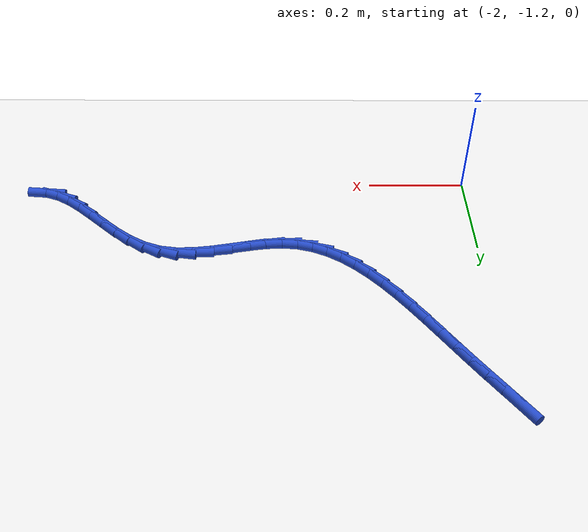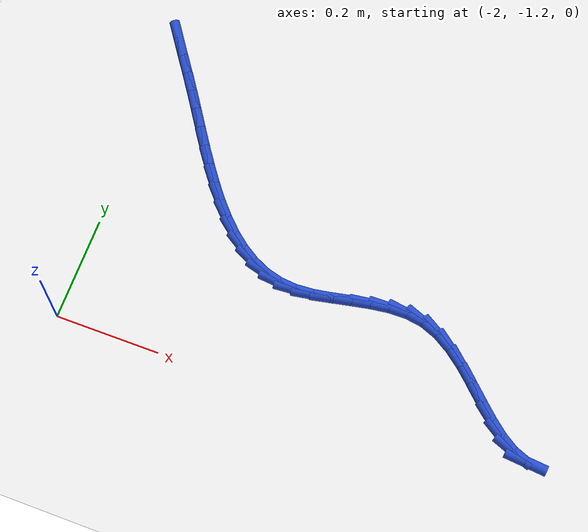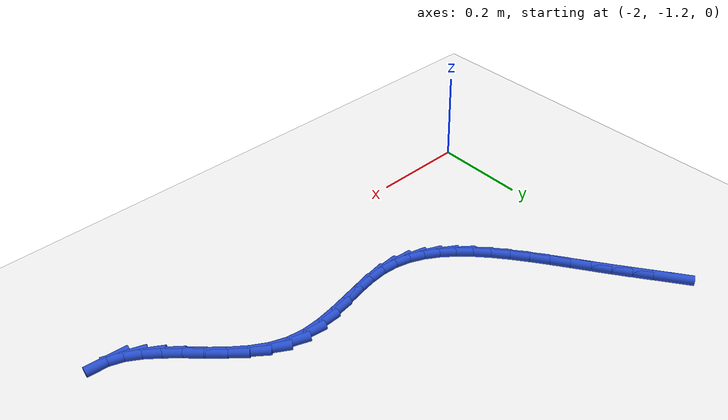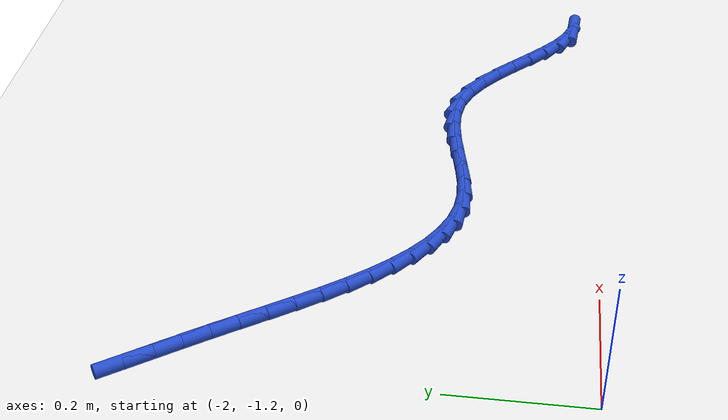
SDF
<sdf version="1.6">
 <world name="default">
  <model name="ground_plane">
   <static>1</static>
   <link name="link">
    <collision name="collision">
     <geometry><plane><normal>0 0 1</normal><size>100 100</size></plane></geometry>
     <surface><friction><ode><mu>100</mu><mu2>50</mu2></ode></friction></surface>
    </collision>
    <visual name="visual">
     <cast_shadows>0</cast_shadows>
     <geometry><plane><normal>0 0 1</normal><size>100 100</size></plane></geometry>
     <material>
      <script><uri>file://media/materials/scripts/gazebo.material</uri><name>Gazebo/WhiteGlow</name></script>
     </material>
    </visual>
   </link>
  </model>
  <model name="line">
   <link name="link_116">
    <pose>-2.001937897660048 -0.5950601714804856 0.01 0 1.57 -0.9677844719969911</pose>
    <collision name="collision">
     <geometry><cylinder><radius>0.01</radius><length>0.08</length></cylinder></geometry>
    </collision>
    <visual name="visual">
     <material>
      <script><name>Gazebo/Blue</name><uri>file://media/materials/scripts/gazebo.material</uri></script>
     </material>
     <geometry><cylinder><radius>0.01</radius><length>0.08</length></cylinder></geometry>
    </visual>
   </link>
   <link name="link_117">
    <pose>-1.980203551429391 -0.6266247555367879 0.01 0 1.57 -0.9652644201954953</pose>
    <collision name="collision">
     <geometry><cylinder><radius>0.01</radius><length>0.08</length></cylinder></geometry>
    </collision>
    <visual name="visual">
     <material>
      <script><name>Gazebo/Blue</name><uri>file://media/materials/scripts/gazebo.material</uri></script>
     </material>
     <geometry><cylinder><radius>0.01</radius><length>0.08</length></cylinder></geometry>
    </visual>
   </link>
   <link name="link_118">
    <pose>-1.957997971406882 -0.6587003565629057 0.01 0 1.57 -0.9707985864369848</pose>
    <collision name="collision">
     <geometry><cylinder><radius>0.01</radius><length>0.08</length></cylinder></geometry>
    </collision>
    <visual name="visual">
     <material>
      <script><name>Gazebo/Blue</name><uri>file://media/materials/scripts/gazebo.material</uri></script>
     </material>
     <geometry><cylinder><radius>0.01</radius><length>0.08</length></cylinder></geometry>
    </visual>
   </link>
   <link name="link_119">
    <pose>-1.9356383822180014 -0.6913834359325519 0.01 0 1.57 -0.9824173266179375</pose>
    <collision name="collision">
     <geometry><cylinder><radius>0.01</radius><length>0.08</length></cylinder></geometry>
    </collision>
    <visual name="visual">
     <material>
      <script><name>Gazebo/Blue</name><uri>file://media/materials/scripts/gazebo.material</uri></script>
     </material>
     <geometry><cylinder><radius>0.01</radius><length>0.08</length></cylinder></geometry>
    </visual>
   </link>
   <link name="link_120">
    <pose>-1.9133988761763276 -0.7247155050009931 0.01 0 1.57 -0.9884118796462621</pose>
    <collision name="collision">
     <geometry><cylinder><radius>0.01</radius><length>0.08</length></cylinder></geometry>
    </collision>
    <visual name="visual">
     <material>
      <script><name>Gazebo/Blue</name><uri>file://media/materials/scripts/gazebo.material</uri></script>
     </material>
     <geometry><cylinder><radius>0.01</radius><length>0.08</length></cylinder></geometry>
    </visual>
   </link>
   <link name="link_121">
    <pose>-1.8912483223405978 -0.7583492245670599 0.01 0 1.57 -0.9839501264993277</pose>
    <collision name="collision">
     <geometry><cylinder><radius>0.01</radius><length>0.08</length></cylinder></geometry>
    </collision>
    <visual name="visual">
     <material>
      <script><name>Gazebo/Blue</name><uri>file://media/materials/scripts/gazebo.material</uri></script>
     </material>
     <geometry><cylinder><radius>0.01</radius><length>0.08</length></cylinder></geometry>
    </visual>
   </link>
   <link name="link_122">
    <pose>-1.8690239162723434 -0.7917695050637632 0.01 0 1.57 -0.9687903544646685</pose>
    <collision name="collision">
     <geometry><cylinder><radius>0.01</radius><length>0.08</length></cylinder></geometry>
    </collision>
    <visual name="visual">
     <material>
      <script><name>Gazebo/Blue</name><uri>file://media/materials/scripts/gazebo.material</uri></script>
     </material>
     <geometry><cylinder><radius>0.01</radius><length>0.08</length></cylinder></geometry>
    </visual>
   </link>
   <link name="link_123">
    <pose>-1.8465623347442255 -0.8244605959936709 0.01 0 1.57 -0.9421632851865678</pose>
    <collision name="collision">
     <geometry><cylinder><radius>0.01</radius><length>0.08</length></cylinder></geometry>
    </collision>
    <visual name="visual">
     <material>
      <script><name>Gazebo/Blue</name><uri>file://media/materials/scripts/gazebo.material</uri></script>
     </material>
     <geometry><cylinder><radius>0.01</radius><length>0.08</length></cylinder></geometry>
    </visual>
   </link>
   <link name="link_124">
    <pose>-1.8237002545289052 -0.8559067468593513 0.01 0 1.57 -0.9027142070085242</pose>
    <collision name="collision">
     <geometry><cylinder><radius>0.01</radius><length>0.08</length></cylinder></geometry>
    </collision>
    <visual name="visual">
     <material>
      <script><name>Gazebo/Blue</name><uri>file://media/materials/scripts/gazebo.material</uri></script>
     </material>
     <geometry><cylinder><radius>0.01</radius><length>0.08</length></cylinder></geometry>
    </visual>
   </link>
   <link name="link_125">
    <pose>-1.8002743523990439 -0.8855922071633723 0.01 0 1.57 -0.8484610851969966</pose>
    <collision name="collision">
     <geometry><cylinder><radius>0.01</radius><length>0.08</length></cylinder></geometry>
    </collision>
    <visual name="visual">
     <material>
      <script><name>Gazebo/Blue</name><uri>file://media/materials/scripts/gazebo.material</uri></script>
     </material>
     <geometry><cylinder><radius>0.01</radius><length>0.08</length></cylinder></geometry>
    </visual>
   </link>
   <link name="link_126">
    <pose>-1.7761213051273022 -0.9130012264083017 0.01 0 1.57 -0.7768062483121362</pose>
    <collision name="collision">
     <geometry><cylinder><radius>0.01</radius><length>0.08</length></cylinder></geometry>
    </collision>
    <visual name="visual">
     <material>
      <script><name>Gazebo/Blue</name><uri>file://media/materials/scripts/gazebo.material</uri></script>
     </material>
     <geometry><cylinder><radius>0.01</radius><length>0.08</length></cylinder></geometry>
    </visual>
   </link>
   <link name="link_127">
    <pose>-1.7510777894863403 -0.9376180540967074 0.01 0 1.57 -0.6847312386911316</pose>
    <collision name="collision">
     <geometry><cylinder><radius>0.01</radius><length>0.08</length></cylinder></geometry>
    </collision>
    <visual name="visual">
     <material>
      <script><name>Gazebo/Blue</name><uri>file://media/materials/scripts/gazebo.material</uri></script>
     </material>
     <geometry><cylinder><radius>0.01</radius><length>0.08</length></cylinder></geometry>
    </visual>
   </link>
   <link name="link_128">
    <pose>-1.7249804822488197 -0.9589269397311574 0.01 0 1.57 -0.569416112002807</pose>
    <collision name="collision">
     <geometry><cylinder><radius>0.01</radius><length>0.08</length></cylinder></geometry>
    </collision>
    <visual name="visual">
     <material>
      <script><name>Gazebo/Blue</name><uri>file://media/materials/scripts/gazebo.material</uri></script>
     </material>
     <geometry><cylinder><radius>0.01</radius><length>0.08</length></cylinder></geometry>
    </visual>
   </link>
   <link name="link_129">
    <pose>-1.6976660601874027 -0.97641213281422 0.01 0 1.57 -0.42958771540316043</pose>
    <collision name="collision">
     <geometry><cylinder><radius>0.01</radius><length>0.08</length></cylinder></geometry>
    </collision>
    <visual name="visual">
     <material>
      <script><name>Gazebo/Blue</name><uri>file://media/materials/scripts/gazebo.material</uri></script>
     </material>
     <geometry><cylinder><radius>0.01</radius><length>0.08</length></cylinder></geometry>
    </visual>
   </link>
   <link name="link_130">
    <pose>-1.6689712000747488 -0.9895578828484632 0.01 0 1.57 -0.2675954382439734</pose>
    <collision name="collision">
     <geometry><cylinder><radius>0.01</radius><length>0.08</length></cylinder></geometry>
    </collision>
    <visual name="visual">
     <material>
      <script><name>Gazebo/Blue</name><uri>file://media/materials/scripts/gazebo.material</uri></script>
     </material>
     <geometry><cylinder><radius>0.01</radius><length>0.08</length></cylinder></geometry>
    </visual>
   </link>
   <link name="link_131">
    <pose>-1.638732578683519 -0.9978484393364544 0.01 0 1.57 -0.09128809497785306</pose>
    <collision name="collision">
     <geometry><cylinder><radius>0.01</radius><length>0.08</length></cylinder></geometry>
    </collision>
    <visual name="visual">
     <material>
      <script><name>Gazebo/Blue</name><uri>file://media/materials/scripts/gazebo.material</uri></script>
     </material>
     <geometry><cylinder><radius>0.01</radius><length>0.08</length></cylinder></geometry>
    </visual>
   </link>
   <link name="link_132">
    <pose>-1.6067881511249413 -1.0007727129505806 0.01 0 1.57 0.0663937748711576</pose>
    <collision name="collision">
     <geometry><cylinder><radius>0.01</radius><length>0.08</length></cylinder></geometry>
    </collision>
    <visual name="visual">
     <material>
      <script><name>Gazebo/Blue</name><uri>file://media/materials/scripts/gazebo.material</uri></script>
     </material>
     <geometry><cylinder><radius>0.01</radius><length>0.08</length></cylinder></geometry>
    </visual>
   </link>
   <link name="link_133">
    <pose>-1.573172775463206 -0.9985375760406047 0.01 0 1.57 0.16219750226553967</pose>
    <collision name="collision">
     <geometry><cylinder><radius>0.01</radius><length>0.08</length></cylinder></geometry>
    </collision>
    <visual name="visual">
     <material>
      <script><name>Gazebo/Blue</name><uri>file://media/materials/scripts/gazebo.material</uri></script>
     </material>
     <geometry><cylinder><radius>0.01</radius><length>0.08</length></cylinder></geometry>
    </visual>
   </link>
   <link name="link_134">
    <pose>-1.5383288462651086 -0.9928358897980003 0.01 0 1.57 0.202126181837765</pose>
    <collision name="collision">
     <geometry><cylinder><radius>0.01</radius><length>0.08</length></cylinder></geometry>
    </collision>
    <visual name="visual">
     <material>
      <script><name>Gazebo/Blue</name><uri>file://media/materials/scripts/gazebo.material</uri></script>
     </material>
     <geometry><cylinder><radius>0.01</radius><length>0.08</length></cylinder></geometry>
    </visual>
   </link>
   <link name="link_135">
    <pose>-1.5027492891377041 -0.9855447653194781 0.01 0 1.57 0.19307029091802783</pose>
    <collision name="collision">
     <geometry><cylinder><radius>0.01</radius><length>0.08</length></cylinder></geometry>
    </collision>
    <visual name="visual">
     <material>
      <script><name>Gazebo/Blue</name><uri>file://media/materials/scripts/gazebo.material</uri></script>
     </material>
     <geometry><cylinder><radius>0.01</radius><length>0.08</length></cylinder></geometry>
    </visual>
   </link>
   <link name="link_136">
    <pose>-1.4669270296880472 -0.978541313701749 0.01 0 1.57 0.13519473230960144</pose>
    <collision name="collision">
     <geometry><cylinder><radius>0.01</radius><length>0.08</length></cylinder></geometry>
    </collision>
    <visual name="visual">
     <material>
      <script><name>Gazebo/Blue</name><uri>file://media/materials/scripts/gazebo.material</uri></script>
     </material>
     <geometry><cylinder><radius>0.01</radius><length>0.08</length></cylinder></geometry>
    </visual>
   </link>
   <link name="link_137">
    <pose>-1.4313549935231922 -0.9737026460415229 0.01 0 1.57 0.02287278508961553</pose>
    <collision name="collision">
     <geometry><cylinder><radius>0.01</radius><length>0.08</length></cylinder></geometry>
    </collision>
    <visual name="visual">
     <material>
      <script><name>Gazebo/Blue</name><uri>file://media/materials/scripts/gazebo.material</uri></script>
     </material>
     <geometry><cylinder><radius>0.01</radius><length>0.08</length></cylinder></geometry>
    </visual>
   </link>
   <link name="link_138">
    <pose>-1.3965261062501952 -0.9729058734355105 0.01 0 1.57 -0.15131453092136266</pose>
    <collision name="collision">
     <geometry><cylinder><radius>0.01</radius><length>0.08</length></cylinder></geometry>
    </collision>
    <visual name="visual">
     <material>
      <script><name>Gazebo/Blue</name><uri>file://media/materials/scripts/gazebo.material</uri></script>
     </material>
     <geometry><cylinder><radius>0.01</radius><length>0.08</length></cylinder></geometry>
    </visual>
   </link>
   <link name="link_139">
    <pose>-1.3629332934761096 -0.978028106980422 0.01 0 1.57 -0.3724300029480086</pose>
    <collision name="collision">
     <geometry><cylinder><radius>0.01</radius><length>0.08</length></cylinder></geometry>
    </collision>
    <visual name="visual">
     <material>
      <script><name>Gazebo/Blue</name><uri>file://media/materials/scripts/gazebo.material</uri></script>
     </material>
     <geometry><cylinder><radius>0.01</radius><length>0.08</length></cylinder></geometry>
    </visual>
   </link>
   <link name="link_140">
    <pose>-1.3309819177801385 -0.9905102752414893 0.01 0 1.57 -0.5544040580116429</pose>
    <collision name="collision">
     <geometry><cylinder><radius>0.01</radius><length>0.08</length></cylinder></geometry>
    </collision>
    <visual name="visual">
     <material>
      <script><name>Gazebo/Blue</name><uri>file://media/materials/scripts/gazebo.material</uri></script>
     </material>
     <geometry><cylinder><radius>0.01</radius><length>0.08</length></cylinder></geometry>
    </visual>
   </link>
   <link name="link_141">
    <pose>-1.3005833389631545 -1.0093325035466514 0.01 0 1.57 -0.6746205897633066</pose>
    <collision name="collision">
     <geometry><cylinder><radius>0.01</radius><length>0.08</length></cylinder></geometry>
    </collision>
    <visual name="visual">
     <material>
      <script><name>Gazebo/Blue</name><uri>file://media/materials/scripts/gazebo.material</uri></script>
     </material>
     <geometry><cylinder><radius>0.01</radius><length>0.08</length></cylinder></geometry>
    </visual>
   </link>
   <link name="link_142">
    <pose>-1.2714758396519403 -1.032612758367687 0.01 0 1.57 -0.7442042089664272</pose>
    <collision name="collision">
     <geometry><cylinder><radius>0.01</radius><length>0.08</length></cylinder></geometry>
    </collision>
    <visual name="visual">
     <material>
      <script><name>Gazebo/Blue</name><uri>file://media/materials/scripts/gazebo.material</uri></script>
     </material>
     <geometry><cylinder><radius>0.01</radius><length>0.08</length></cylinder></geometry>
    </visual>
   </link>
   <link name="link_143">
    <pose>-1.243397517162428 -1.0584680830772284 0.01 0 1.57 -0.7712210248816829</pose>
    <collision name="collision">
     <geometry><cylinder><radius>0.01</radius><length>0.08</length></cylinder></geometry>
    </collision>
    <visual name="visual">
     <material>
      <script><name>Gazebo/Blue</name><uri>file://media/materials/scripts/gazebo.material</uri></script>
     </material>
     <geometry><cylinder><radius>0.01</radius><length>0.08</length></cylinder></geometry>
    </visual>
   </link>
   <link name="link_144">
    <pose>-1.2160864688105495 -1.085015521047907 0.01 0 1.57 -0.7576250306090714</pose>
    <collision name="collision">
     <geometry><cylinder><radius>0.01</radius><length>0.08</length></cylinder></geometry>
    </collision>
    <visual name="visual">
     <material>
      <script><name>Gazebo/Blue</name><uri>file://media/materials/scripts/gazebo.material</uri></script>
     </material>
     <geometry><cylinder><radius>0.01</radius><length>0.08</length></cylinder></geometry>
    </visual>
   </link>
   <link name="link_145">
    <pose>-1.189280791912236 -1.1103721156523563 0.01 0 1.57 -0.6980091981267137</pose>
    <collision name="collision">
     <geometry><cylinder><radius>0.01</radius><length>0.08</length></cylinder></geometry>
    </collision>
    <visual name="visual">
     <material>
      <script><name>Gazebo/Blue</name><uri>file://media/materials/scripts/gazebo.material</uri></script>
     </material>
     <geometry><cylinder><radius>0.01</radius><length>0.08</length></cylinder></geometry>
    </visual>
   </link>
   <link name="link_146">
    <pose>-1.1627185837834193 -1.1326549102632069 0.01 0 1.57 -0.5776600339408666</pose>
    <collision name="collision">
     <geometry><cylinder><radius>0.01</radius><length>0.08</length></cylinder></geometry>
    </collision>
    <visual name="visual">
     <material>
      <script><name>Gazebo/Blue</name><uri>file://media/materials/scripts/gazebo.material</uri></script>
     </material>
     <geometry><cylinder><radius>0.01</radius><length>0.08</length></cylinder></geometry>
    </visual>
   </link>
   <link name="link_147">
    <pose>-1.1361379417400312 -1.1499809482530923 0.01 0 1.57 -0.3722165427456442</pose>
    <collision name="collision">
     <geometry><cylinder><radius>0.01</radius><length>0.08</length></cylinder></geometry>
    </collision>
    <visual name="visual">
     <material>
      <script><name>Gazebo/Blue</name><uri>file://media/materials/scripts/gazebo.material</uri></script>
     </material>
     <geometry><cylinder><radius>0.01</radius><length>0.08</length></cylinder></geometry>
    </visual>
   </link>
   <link name="link_148">
    <pose>-1.1092770074258615 -1.1604678694489456 0.01 0 1.57 -0.08931051155447096</pose>
    <collision name="collision">
     <geometry><cylinder><radius>0.01</radius><length>0.08</length></cylinder></geometry>
    </collision>
    <visual name="visual">
     <material>
      <script><name>Gazebo/Blue</name><uri>file://media/materials/scripts/gazebo.material</uri></script>
     </material>
     <geometry><cylinder><radius>0.01</radius><length>0.08</length></cylinder></geometry>
    </visual>
   </link>
  </model>
 </world>
</sdf>
